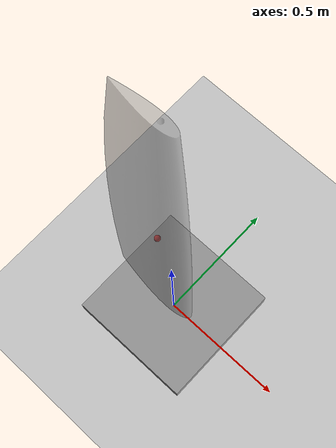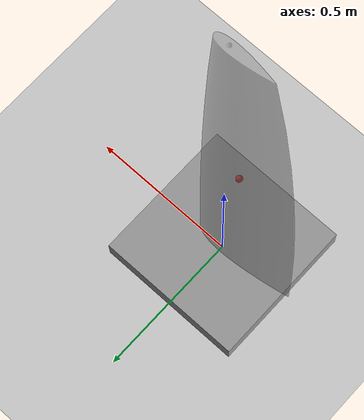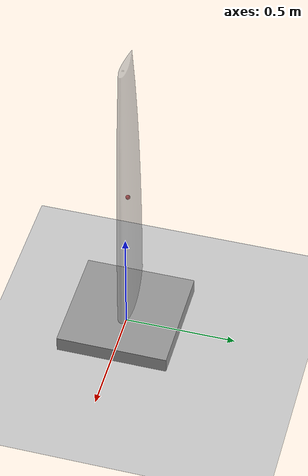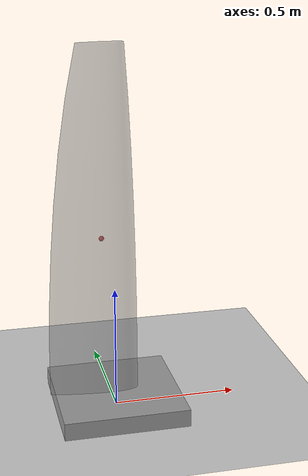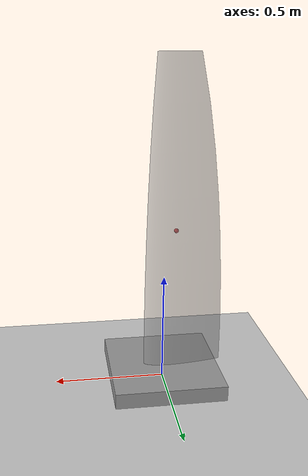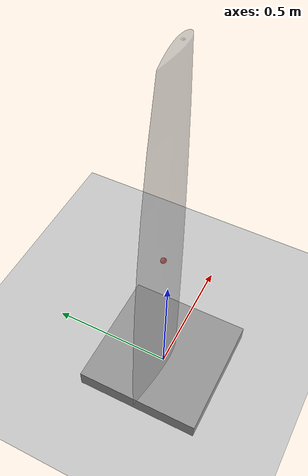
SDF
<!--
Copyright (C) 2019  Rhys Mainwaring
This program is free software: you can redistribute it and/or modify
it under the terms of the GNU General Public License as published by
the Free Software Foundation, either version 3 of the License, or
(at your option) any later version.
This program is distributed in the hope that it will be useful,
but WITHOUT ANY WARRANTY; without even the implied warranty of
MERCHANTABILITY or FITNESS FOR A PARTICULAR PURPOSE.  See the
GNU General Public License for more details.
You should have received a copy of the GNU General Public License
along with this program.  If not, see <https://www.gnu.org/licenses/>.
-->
<?xml version="1.0" ?>
<sdf version="1.6">
<world name="wingsail_test_world">

    <!-- GUI -->
    <gui fullscreen='0'>
        <camera name='user_camera'>
            <pose>-1.46836 1.73682 1.07819 0 0.179455 -0.923817</pose>
            <view_controller>orbit</view_controller>
            <projection_type>perspective</projection_type>
        </camera>
    </gui>

    <!-- Environment -->
    <wind>
        <linear_velocity>-20.0, 0.0, 0.0</linear_velocity>
    </wind>

    <!-- Lights -->
    <include>
        <uri>model://sun</uri>
    </include>

    <!-- A ground plane -->
    <include>
        <uri>model://ground_plane</uri>
    </include>

    <include>
        <pose>0 0 0.02 0 0 0</pose>
        <uri>model://wing_sail</uri>
    </include>

</world>
</sdf>

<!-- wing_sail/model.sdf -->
<sdf version='1.6'>
<model name='wing_sail'>
    <pose>0 0 0.05 0 0 0</pose>
    <static>false</static>

    <!-- Sail plugin

        Linear approximations to lift / drag coefficient curves for NACA 0018 airfoil
        Foil stalls at approx. 14 degrees (lower in the linear approx.)
    -->
    <plugin name="wing_sail_liftdrag" filename="libSailPlugin.so">
        <a0>0.0</a0>
        <cla>6.2832</cla>
        <alpha_stall>0.1592</alpha_stall>
        <cla_stall>-0.7083</cla_stall>
        <cda>0.63662</cda>
        <area>0.4858</area>
        <fluid_density>1.2</fluid_density>
        <forward>1 0 0</forward>
        <upward>0 1 0</upward>
        <cp>-0.05 0.0 0.65</cp>
        <link_name>wing_sail_link</link_name>
        <radial_symmetry>true</radial_symmetry>
        <topic>lift_drag</topic>
    </plugin>

    <!-- Fix base to the world

        http://gazebosim.org/tutorials/?tut=ros_urdf#RigidlyFixingAModeltotheWorld
    -->

    <!-- Base -->
    <link name="base_link">
        <visual name="base">
            <geometry>
                <box>
                    <size>0.5 0.5 0.1</size>
                </box>
            </geometry>
            <material>
                <script>
                    <name>Gazebo/Gray</name>
                </script>
            </material>
        </visual>
        <collision name="base">
            <geometry>
                <box>
                    <size>0.5 0.5 0.1</size>
                </box>
            </geometry>
        </collision>

        <visual name="imu_visual">
            <geometry>
                <box>
                    <size>0.04 0.04 0.01</size>
                </box>
            </geometry>
            <material>
                <script>
                    <name>Gazebo/Green</name>
                </script>
            </material>
        </visual>

        <sensor name='imu_sensor' type='imu'>
            <pose>0 0 0 3.141593 0 0</pose>
            <always_on>1</always_on>
            <update_rate>1000</update_rate>
            <visualize>1</visualize>
            <topic>sensors/imu</topic>
            <imu>
                <topic>sensors/imu</topic>
                <angular_velocity/>
                <linear_acceleration/>
            </imu>
        </sensor>

        <inertial>
            <mass>1000</mass>
            <inertia>
                <ixx>21.66666667</ixx>
                <ixy>0</ixy>
                <iyy>21.66666667</iyy>
                <iyz>0</iyz>
                <izz>41.666667</izz>
            </inertia>
        </inertial>
    </link>

    <!-- Wing sail -->
    <link name="wing_sail_link">
        <pose>0 0 0.05 0 0 0</pose>
        <visual name="wing_sail_visual">
            <geometry>
                <mesh>
                    <uri>model://land_yacht/meshes/wing_sail.stl</uri>
                </mesh>
            </geometry>
            <material>
                <script>
                    <name>Gazebo/GreyTransparent</name>
                </script>
            </material>
        </visual>

        <visual name="cp_wing_sail_visual">
            <pose>-0.05 0 0.65 0 0 0</pose>
            <geometry>
                <sphere><radius>0.01</radius></sphere>
            </geometry>
            <material>
                <script>
                    <name>Gazebo/Red</name>
                </script>
            </material>
        </visual>

        <collision name="wing_sail_collision">
            <geometry>
                <mesh>
                    <uri>model://land_yacht/meshes/wing_sail.stl</uri>
                </mesh>
            </geometry>
        </collision>

        <inertial>
            <pose>-0.05 0.0 0.65 0 0 0</pose>
            <mass>2.0</mass>
            <inertia>
                <ixx>0.326733333</ixx>
                <ixy>0</ixy>
                <iyy>0.348266667</iyy>
                <iyz>0</iyz>
                <izz>0.021666667</izz>
            </inertia>
        </inertial>
    </link>

    <joint type="fixed" name="wing_sail_joint">
        <pose> 0.5 0 0 0 0 0</pose>
        <child>wing_sail_link</child>
        <parent>base_link</parent>
        <sensor name="force_torque_sensor" type="force_torque">
            <always_on>true</always_on>
            <update_rate>30</update_rate>
            <visualize>true</visualize>
        </sensor>
    </joint>

    <!-- Wing sail counterweight -->

</model>
</sdf>
